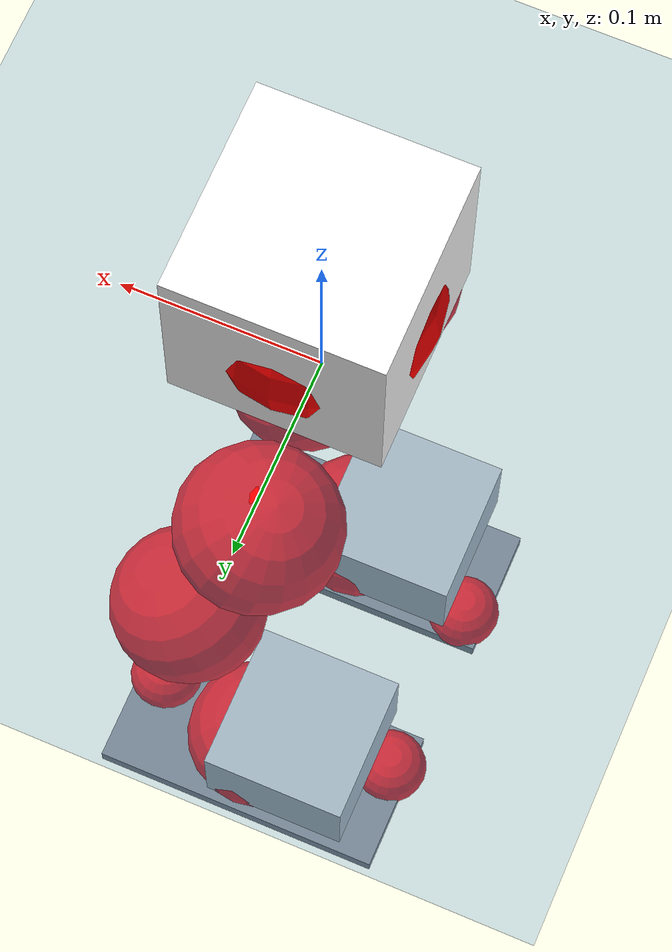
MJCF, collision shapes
<mujoco model="pi_12dof_release_v1">
  <compiler angle="radian" assetdir="assets" balanceinertia="true" inertiafromgeom="false"/>

  <option timestep="0.005" density="1.2" viscosity="2e-05"/>

  <size nkey="1"/>

  <visual>
    <quality shadowsize="8192"/>
    <map shadowclip="0.5"/>
  </visual>

  <default>
    <default class="/">
      <joint armature="0.01" damping="0.01" frictionloss="0.01"/>
      <geom contype="0" conaffinity="0" group="1" solref="-1000 -80"/>
      <site size="0.01 0.005 0.005" group="5"/>
      <general forcelimited="true" biastype="affine" gainprm="20" biasprm="0 -20 -0.5"/>
      <default class="foot">
        <geom size="0.0845 0.036 0.005" type="box" condim="6" group="4" priority="1" friction="0.9 0.2 0.2" solimp="0.015 1 0.005"/>
      </default>
      <default class="reward_collision_sphere">
        <geom group="5" rgba="1 0 0 1"/>
      </default>
    </default>
  </default>

  <asset>
    <texture type="skybox" colorspace="auto" name="//unnamed_texture_0" builtin="gradient" rgb1="0.95 0.95 0.95" rgb2="0.95 0.95 0.95" width="100" height="600"/>
    <texture type="2d" colorspace="auto" name="texplane" builtin="checker" rgb1="0.345 0.575 0.748" rgb2="0.345 0.575 0.748" markrgb="1 1 1" width="512" height="512"/>
    <material name="MatPlane" class="/" texture="texplane" texuniform="true" texrepeat="2 2" specular="0.9"/>
    <mesh name="baselink_1" class="/" file="baselink_1.STL"/>
    <mesh name="r_hip_pitch_link" class="/" file="r_hip_pitch_link.STL"/>
    <mesh name="r_hip_roll_link" class="/" file="r_hip_roll_link.STL"/>
    <mesh name="r_thigh_link" class="/" file="r_thigh_link.STL"/>
    <mesh name="r_calf_link" class="/" file="r_calf_link.STL"/>
    <mesh name="r_ankle_pitch_link" class="/" file="r_ankle_pitch_link.STL"/>
    <mesh name="r_ankle_roll_link" class="/" file="r_ankle_roll_link.STL"/>
    <mesh name="l_hip_pitch_link" class="/" file="l_hip_pitch_link.STL"/>
    <mesh name="l_hip_roll_link" class="/" file="l_hip_roll_link.STL"/>
    <mesh name="l_thigh_link" class="/" file="l_thigh_link.STL"/>
    <mesh name="l_calf_link" class="/" file="l_calf_link.STL"/>
    <mesh name="l_ankle_pitch_link" class="/" file="l_ankle_pitch_link.STL"/>
    <mesh name="l_ankle_roll_link" class="/" file="l_ankle_roll_link.STL"/>
  </asset>

  <worldbody>
    <geom name="floor" class="/" size="100 100 0.125" type="plane" group="0" material="MatPlane"/>
    <light name="toplight_shadow" class="/" pos="0 0 5" dir="0.0990148 0.0990148 -0.990148" type="directional" ambient="0.04 0.04 0.04" diffuse="0.55 0.55 0.55" specular="0.12 0.12 0.12"/>
    <light name="toplight_fill" class="/" pos="0 0 5" dir="0.0990148 0.0990148 -0.990148" type="directional" castshadow="false" ambient="0.04 0.04 0.04" diffuse="0.3 0.3 0.3" specular="0.08 0.08 0.08"/>
    <body name="trunk" pos="0.000917503 0.000223836 -0.00102213" quat="1 0.000344182 -4.19547e-06 -1.25248e-05">
      <inertial pos="-0.000247702 -0.00265611 0.0474931" quat="0.696974 0.00896504 0.00684534 0.717008" mass="2.37143" diaginertia="0.0107428 0.00493482 0.00859289"/>
      <joint name="//unnamed_joint_0" type="free"/>
      <geom name="//unnamed_geom_1" class="/" type="mesh" density="0" rgba="1 1 1 1" mesh="baselink_1"/>
      <geom name="//unnamed_geom_2" class="/" size="0.0509679 0.0509679 0.0509679" pos="0 0 0.0924689" type="box" rgba="1 1 1 1"/>
      <geom name="//unnamed_geom_3" class="reward_collision_sphere" size="0.0560647" pos="0 0 0.0809103"/>
      <site name="imu" class="/" pos="0.0113464 -0.000636069 -0.0112827" size="0.0101936"/>
      <camera name="track" class="/" pos="0 -1.76964 0" quat="0.707107 0.707107 0 0" mode="trackcom"/>
      <camera name="ego_camera" class="/" pos="0.0763047 0 0.208055" quat="-0.5 -0.5 0.5 0.5"/>
      <body name="r_hip_pitch_link" pos="-0.00119636 -0.0210503 -0.0379644" quat="0.992198 -1.86878e-05 -0.124671 1.62726e-06">
        <inertial pos="0.000909581 -0.0511474 -1.1441e-05" quat="-0.0188739 0.705531 -0.0284276 0.707857" mass="0.377801" diaginertia="0.000114076 5.0467e-05 0.000166124"/>
        <joint name="r_hip_pitch_joint" class="/" pos="0 0 0" axis="0.00455474 -0.999982 -0.00383254" stiffness="0.00344122" range="-1.73892 1.20146" armature="0.00919916" damping="0.0128593" frictionloss="0.0106045"/>
        <geom name="//unnamed_geom_4" class="/" type="mesh" density="0" rgba="0.75294 0.75294 0.75294 1" mesh="r_hip_pitch_link"/>
        <geom name="//unnamed_geom_5" class="/" size="0.000509679 0.000509679 0.000509679" type="box" rgba="0.75294 0.75294 0.75294 1"/>
        <body name="r_hip_roll_link" pos="-4.20722e-05 -0.0469991 0.000282726" quat="0.999999 0.000782586 -0.000464805 0.000479716">
          <inertial pos="-0.000853039 -0.000152066 -0.0713481" quat="0.702288 -0.0770158 -0.0866962 0.702385" mass="0.404329" diaginertia="0.000362438 0.000145159 0.000259809"/>
          <joint name="r_hip_roll_joint" class="/" pos="0 0 0" axis="-0.99999 0.00242112 -0.00377948" range="-0.115603 0.496191" armature="0.00997962" damping="0" frictionloss="0.0113988"/>
          <geom name="//unnamed_geom_6" class="/" type="mesh" density="0" rgba="0.75294 0.75294 0.75294 1" mesh="r_hip_roll_link"/>
          <geom name="//unnamed_geom_7" class="/" size="0.000509679 0.000509679 0.000509679" type="box" rgba="0.75294 0.75294 0.75294 1"/>
          <geom name="//unnamed_geom_8" class="reward_collision_sphere" size="0.0407744"/>
          <body name="r_thigh_link" pos="0.000913386 0.00262339 -0.0806407" quat="1 -0.000280225 0.000450138 -5.93325e-05">
            <inertial pos="0.000228405 -0.000616666 -0.0544513" quat="0.73684 0.676067 0.00101762 0.000290055" mass="0.119599" diaginertia="0.000133808 5.18419e-05 0.000119037"/>
            <joint name="r_thigh_joint" class="/" pos="0 0 0" axis="-0.00024842 0.000735031 -1" range="-0.321235 0.615829" armature="0.0114845" damping="0.00668916" frictionloss="0.00999289"/>
            <geom name="//unnamed_geom_9" class="/" type="mesh" density="0" rgba="0.75294 0.75294 0.75294 1" mesh="r_thigh_link"/>
            <geom name="//unnamed_geom_10" class="/" size="0.000509679 0.000509679 0.000509679" type="box" rgba="0.75294 0.75294 0.75294 1"/>
            <body name="r_calf_link" pos="-0.00200278 -0.00376205 -0.081237" quat="0.947648 2.42049e-06 0.319316 -1.08739e-05">
              <inertial pos="-0.00101557 -0.00358888 -0.0813558" quat="0.999975 0.00591218 -7.16972e-05 -0.00379113" mass="0.853885" diaginertia="0.0037585 0.00194621 0.000353851"/>
              <joint name="r_calf_joint" class="/" pos="0 0 0" axis="0.00178329 -0.999998 -0.000299542" range="-1.65125 0.631052" armature="0.0104749" damping="0.0148682" frictionloss="0.0104748"/>
              <geom name="//unnamed_geom_11" class="/" type="mesh" density="0" rgba="0.75294 0.75294 0.75294 1" mesh="r_calf_link"/>
              <geom name="//unnamed_geom_12" class="/" size="0.000509679 0.000509679 0.000509679" type="box" rgba="0.75294 0.75294 0.75294 1"/>
              <geom name="//unnamed_geom_13" class="reward_collision_sphere" size="0.0407744"/>
              <body name="r_ankle_pitch_link" pos="0.000991965 0.00123031 -0.163525" quat="0.980233 0.000397274 -0.197844 9.08303e-05">
                <inertial pos="0.007136 0.00395494 -0.000254491" quat="0.00178136 0.707273 -0.00262271 0.706933" mass="0.190648" diaginertia="0.000335487 0.000118361 0.000255605"/>
                <joint name="r_ankle_pitch_joint" class="/" pos="0 0 0" axis="-0.00119077 -0.999999 -0.00118767" range="-1.25831 0.513551" armature="0.0102972" damping="0" frictionloss="0.00994631"/>
                <geom name="//unnamed_geom_14" class="/" type="mesh" density="0" rgba="0.75294 0.75294 0.75294 1" mesh="r_ankle_pitch_link"/>
                <geom name="//unnamed_geom_15" class="/" size="0.039755 0.0407744 0.025484" type="box" rgba="0.75294 0.75294 0.75294 1"/>
                <body name="r_ankle_roll_link" pos="0.0771409 0.0032866 -0.000321347" quat="1 -7.99628e-06 -9.75832e-06 -1.16149e-05">
                  <inertial pos="-0.025748 0.000112029 -0.016486" quat="0.552516 0.431288 0.430977 0.568309" mass="0.559686" diaginertia="0.00124196 0.0005737 0.000594573"/>
                  <joint name="r_ankle_roll_joint" class="/" pos="0 0 0" axis="-1 -0.000386505 -0.000556386" range="-0.139639 0.147213" armature="0.0113938" damping="0.00737583" frictionloss="0.00971308"/>
                  <geom name="//unnamed_geom_16" class="/" type="mesh" density="0" rgba="0.75294 0.75294 0.75294 1" mesh="r_ankle_roll_link"/>
                  <geom name="//unnamed_geom_17" class="/" type="mesh" rgba="0.75294 0.75294 0.75294 1" mesh="r_ankle_roll_link"/>
                  <geom name="right_foot" class="foot" size="0.0838034 0.0364547 0.00486137" pos="-0.0518872 0 -0.0508579"/>
                  <geom name="//unnamed_geom_19" class="reward_collision_sphere" size="0.0407744" pos="-0.0508698 0 -0.0231172"/>
                  <geom name="//unnamed_geom_20" class="reward_collision_sphere" size="0.0203872" pos="0.0152609 0.0176964 -0.0462344"/>
                  <geom name="//unnamed_geom_21" class="reward_collision_sphere" size="0.0203872" pos="-0.122087 0.0176964 -0.0462344"/>
                  <site name="right_foot" class="foot" pos="-0.0518872 0 -0.0508579" size="0.0101936"/>
                </body>
              </body>
            </body>
          </body>
        </body>
      </body>
      <body name="l_hip_pitch_link" pos="0.00162875 0.019972 -0.0398883" quat="0.9922 2.22116e-05 -0.124652 6.12243e-06">
        <inertial pos="0.000667229 0.0481013 -0.00264708" quat="-0.040745 0.710134 0.0322587 0.702146" mass="0.424376" diaginertia="0.000148644 5.91921e-05 0.000214426"/>
        <joint name="l_hip_pitch_joint" class="/" pos="0 0 0" axis="-0.00131927 0.999999 0.000461516" range="-1.25754 1.75042" armature="0.0103287" damping="0.0119321" frictionloss="0.00986725"/>
        <geom name="//unnamed_geom_22" class="/" type="mesh" density="0" rgba="0.75294 0.75294 0.75294 1" mesh="l_hip_pitch_link"/>
        <geom name="//unnamed_geom_23" class="/" size="0.000509679 0.000509679 0.000509679" type="box" rgba="0.75294 0.75294 0.75294 1"/>
        <body name="l_hip_roll_link" pos="-0.00163059 0.0504426 0.000212228" quat="1 3.44903e-05 0.000249327 -0.000412018">
          <inertial pos="-0.00417689 -0.0010884 -0.0729019" quat="0.698925 -0.0767675 -0.0785212 0.706714" mass="0.411416" diaginertia="0.000347966 0.0001505 0.000259033"/>
          <joint name="l_hip_roll_joint" class="/" pos="0 0 0" axis="-0.999989 0.00313833 -0.00348961" range="-0.520738 0.134621" armature="0.0106741" damping="0.012289" frictionloss="0.0102023"/>
          <geom name="//unnamed_geom_24" class="/" type="mesh" density="0" rgba="0.75294 0.75294 0.75294 1" mesh="l_hip_roll_link"/>
          <geom name="//unnamed_geom_25" class="/" size="0.000509679 0.000509679 0.000509679" type="box" rgba="0.75294 0.75294 0.75294 1"/>
          <geom name="//unnamed_geom_26" class="reward_collision_sphere" size="0.0407744"/>
          <body name="l_thigh_link" pos="9.44263e-05 -0.00128072 -0.079158" quat="1 8.24013e-05 0.000143826 -0.000132679">
            <inertial pos="-7.43742e-05 0.000308494 -0.0538141" quat="0.674476 0.738296 -0.00137103 -0.000123379" mass="0.123375" diaginertia="0.000139377 5.42477e-05 0.000121716"/>
            <joint name="l_thigh_joint" class="/" pos="0 0 0" axis="4.73971e-05 -9.13173e-05 -1" range="-0.647943 0.291781" armature="0.00967337" damping="0.00471787" frictionloss="0.0100294"/>
            <geom name="//unnamed_geom_27" class="/" type="mesh" density="0" rgba="0.75294 0.75294 0.75294 1" mesh="l_thigh_link"/>
            <geom name="//unnamed_geom_28" class="/" size="0.000509679 0.000509679 0.000509679" type="box" rgba="0.75294 0.75294 0.75294 1"/>
            <body name="l_calf_link" pos="0.00184008 0.000797732 -0.0814598" quat="0.947625 -5.81961e-05 0.319386 -3.53989e-05">
              <inertial pos="0.000324486 0.00231825 -0.0832981" quat="0.999856 0.0067051 -0.0102679 0.0117337" mass="0.852052" diaginertia="0.00372494 0.00183033 0.000348753"/>
              <joint name="l_calf_joint" class="/" pos="0 0 0" axis="0.00625764 0.999973 -0.0039354" range="-0.646384 1.63226" armature="0.0102422" damping="0" frictionloss="0.0096942"/>
              <geom name="//unnamed_geom_29" class="/" type="mesh" density="0" rgba="0.75294 0.75294 0.75294 1" mesh="l_calf_link"/>
              <geom name="//unnamed_geom_30" class="/" size="0.000509679 0.000509679 0.000509679" type="box" rgba="0.75294 0.75294 0.75294 1"/>
              <geom name="//unnamed_geom_31" class="reward_collision_sphere" size="0.0407744"/>
              <body name="l_ankle_pitch_link" pos="0.00265552 -0.000367405 -0.164198" quat="0.980003 0.000738629 -0.198983 0.000268442">
                <inertial pos="0.00497579 -0.0008912 -0.000497653" quat="-0.0012018 0.707233 0.00219929 0.706976" mass="0.182678" diaginertia="0.000328574 0.000118899 0.000245381"/>
                <joint name="l_ankle_pitch_joint" class="/" pos="0 0 0" axis="2.30808e-05 1 0.000197918" stiffness="0.000600972" range="-0.50272 1.29394" armature="0.00994383" damping="0.00976274" frictionloss="0.00977883"/>
                <geom name="//unnamed_geom_32" class="/" type="mesh" density="0" rgba="0.75294 0.75294 0.75294 1" mesh="l_ankle_pitch_link"/>
                <geom name="//unnamed_geom_33" class="/" size="0.039755 0.0407744 0.025484" type="box" rgba="0.75294 0.75294 0.75294 1"/>
                <body name="l_ankle_roll_link" pos="0.0753315 0.00172408 0.000431983" quat="0.999999 -0.00033991 0.00101547 0.000280766">
                  <inertial pos="-0.0235752 -0.000145391 -0.0173363" quat="0.558857 0.434645 0.436949 0.554832" mass="0.560086" diaginertia="0.00124291 0.000559827 0.000589442"/>
                  <joint name="l_ankle_roll_joint" class="/" pos="0 0 0" axis="-0.999999 -0.000502429 -0.00142741" range="-0.116778 0.138042" armature="0.0110277" damping="0.0207886" frictionloss="0.00985143"/>
                  <geom name="//unnamed_geom_34" class="/" type="mesh" density="0" rgba="0.75294 0.75294 0.75294 1" mesh="l_ankle_roll_link"/>
                  <geom name="//unnamed_geom_35" class="/" type="mesh" rgba="0.75294 0.75294 0.75294 1" mesh="l_ankle_roll_link"/>
                  <geom name="left_foot" class="foot" size="0.0815562 0.0395574 0.00487566" pos="-0.0518872 0 -0.0508579"/>
                  <geom name="//unnamed_geom_37" class="reward_collision_sphere" size="0.0407744" pos="-0.0508698 0 -0.0231172"/>
                  <geom name="//unnamed_geom_38" class="reward_collision_sphere" size="0.0203872" pos="0.0152609 -0.0176964 -0.0462344"/>
                  <geom name="//unnamed_geom_39" class="reward_collision_sphere" size="0.0203872" pos="-0.122087 -0.0176964 -0.0462344"/>
                  <site name="left_foot" class="foot" pos="-0.0518872 0 -0.0508579" size="0.0101936"/>
                </body>
              </body>
            </body>
          </body>
        </body>
      </body>
    </body>
  </worldbody>

  <contact>
    <pair class="/" geom1="floor" geom2="right_foot" name="//unnamed_contact_1"/>
    <pair class="/" geom1="floor" geom2="left_foot" name="//unnamed_contact_0"/>
  </contact>

  <actuator>
    <general name="r_hip_pitch_joint" class="/" joint="r_hip_pitch_joint" forcerange="-22.6463 22.6463" gainprm="19.1462" biasprm="0 -19.1462 -0.520932"/>
    <general name="r_hip_roll_joint" class="/" joint="r_hip_roll_joint" forcerange="-21.6002 21.6002" gainprm="19.1462" biasprm="0 -19.1462 -0.520932"/>
    <general name="r_thigh_joint" class="/" joint="r_thigh_joint" forcerange="-21.9169 21.9169" gainprm="19.1462" biasprm="0 -19.1462 -0.520932"/>
    <general name="r_calf_joint" class="/" joint="r_calf_joint" forcerange="-23.1459 23.1459" gainprm="19.1462" biasprm="0 -19.1462 -0.520932"/>
    <general name="r_ankle_pitch_joint" class="/" joint="r_ankle_pitch_joint" forcerange="-21.2626 21.2626" gainprm="19.1462" biasprm="0 -19.1462 -0.520932"/>
    <general name="r_ankle_roll_joint" class="/" joint="r_ankle_roll_joint" forcerange="-21.09 21.09" gainprm="19.1462" biasprm="0 -19.1462 -0.520932"/>
    <general name="l_hip_pitch_joint" class="/" joint="l_hip_pitch_joint" forcerange="-20.3914 20.3914" gainprm="19.1462" biasprm="0 -19.1462 -0.520932"/>
    <general name="l_hip_roll_joint" class="/" joint="l_hip_roll_joint" forcerange="-19.5147 19.5147" gainprm="19.1462" biasprm="0 -19.1462 -0.520932"/>
    <general name="l_thigh_joint" class="/" joint="l_thigh_joint" forcerange="-22.2523 22.2523" gainprm="19.1462" biasprm="0 -19.1462 -0.520932"/>
    <general name="l_calf_joint" class="/" joint="l_calf_joint" forcerange="-21.3149 21.3149" gainprm="19.1462" biasprm="0 -19.1462 -0.520932"/>
    <general name="l_ankle_pitch_joint" class="/" joint="l_ankle_pitch_joint" forcerange="-22.0937 22.0937" gainprm="19.1462" biasprm="0 -19.1462 -0.520932"/>
    <general name="l_ankle_roll_joint" class="/" joint="l_ankle_roll_joint" forcerange="-21.9071 21.9071" gainprm="19.1462" biasprm="0 -19.1462 -0.520932"/>
  </actuator>

  <sensor>
    <gyro site="imu" name="imu_angular_velocity"/>
    <velocimeter site="imu" name="imu_linear_velocity"/>
    <framelinvel objtype="site" objname="left_foot" name="left_foot_global_linear_velocity"/>
    <framelinvel objtype="site" objname="right_foot" name="right_foot_global_linear_velocity"/>
  </sensor>

  <keyframe>
    <key name="home" qpos="0 0 0.291 1 0 0 0 0.4 0 0 -0.8 0.4 0 -0.4 0 0 0.8 -0.4 0"/>
  </keyframe>
</mujoco>
